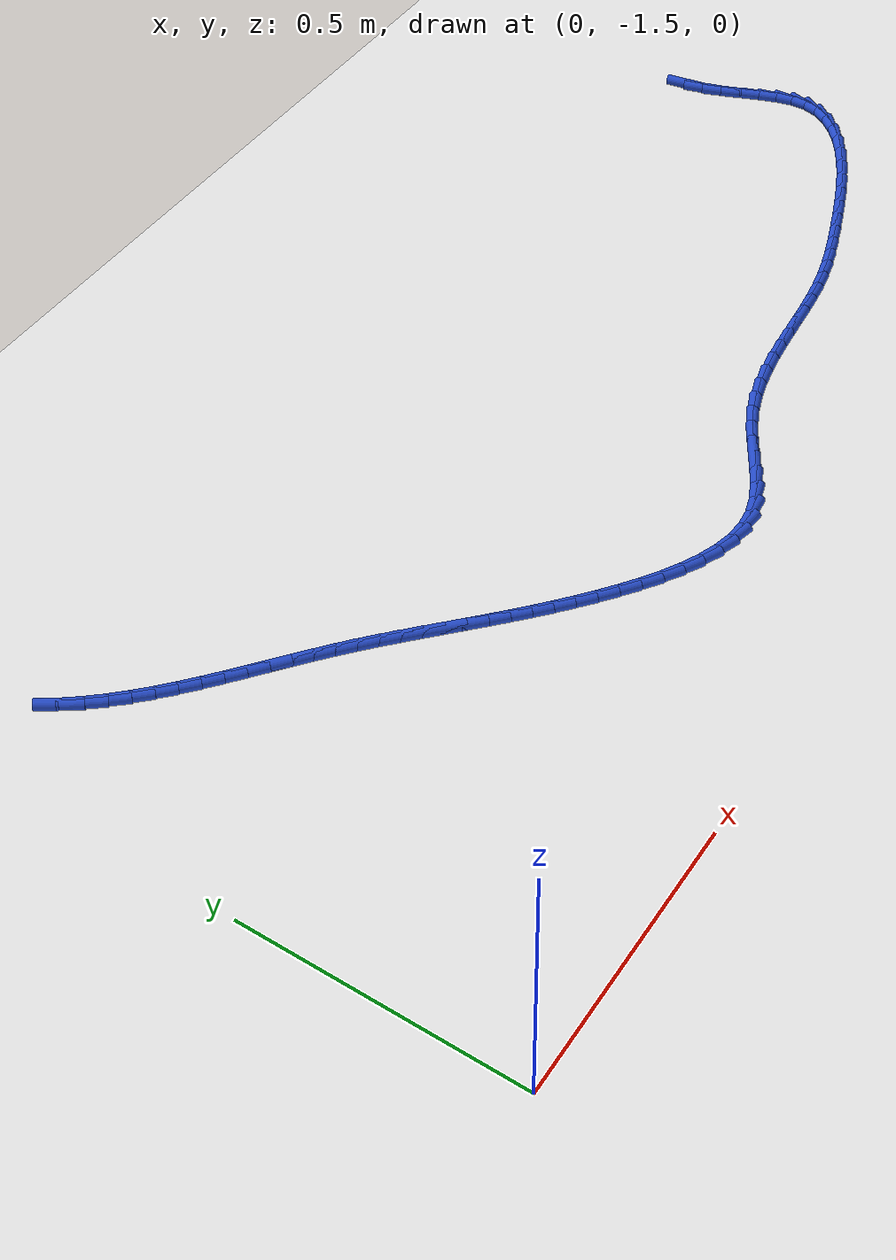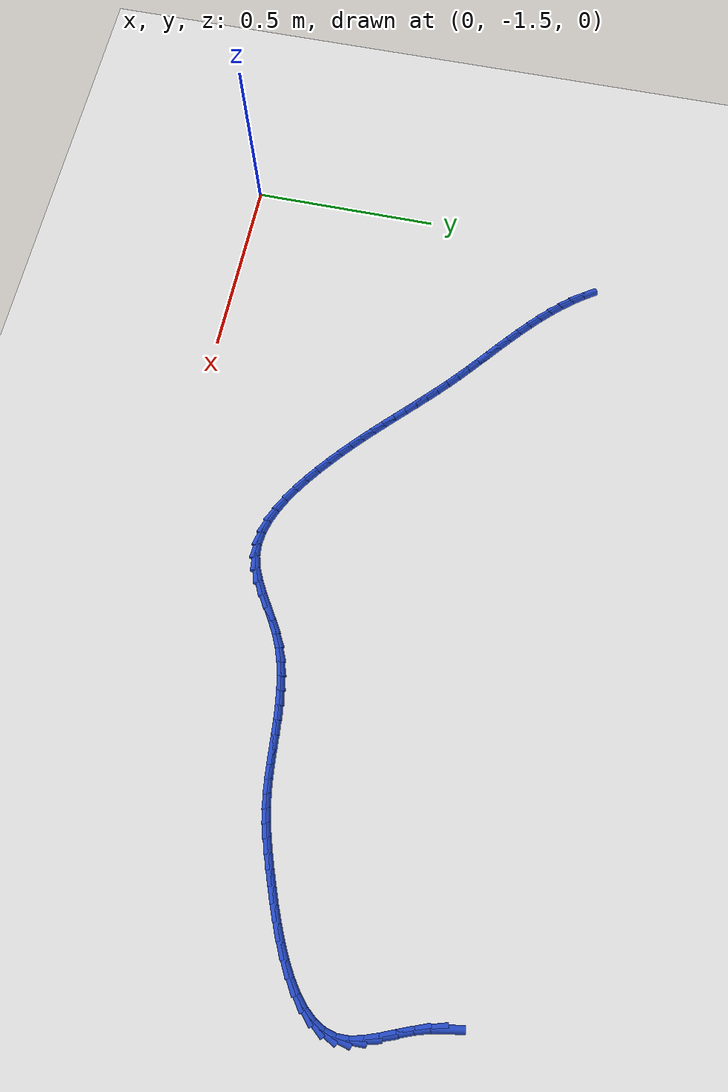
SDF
<sdf version="1.6">
 <world name="default">
  <model name="ground_plane">
   <static>1</static>
   <link name="link">
    <collision name="collision">
     <geometry><plane><normal>0 0 1</normal><size>100 100</size></plane></geometry>
     <surface><friction><ode><mu>100</mu><mu2>50</mu2></ode></friction></surface>
    </collision>
    <visual name="visual">
     <cast_shadows>0</cast_shadows>
     <geometry><plane><normal>0 0 1</normal><size>100 100</size></plane></geometry>
     <material>
      <script><uri>file://media/materials/scripts/gazebo.material</uri><name>Gazebo/WhiteGlow</name></script>
     </material>
    </visual>
   </link>
  </model>
  <model name="line">
   <link name="link_131">
    <pose>2.093746140932153 -0.5566467579130641 0.01 0 1.57 -1.3995459659377611</pose>
    <collision name="collision">
     <geometry><cylinder><radius>0.01</radius><length>0.08</length></cylinder></geometry>
    </collision>
    <visual name="visual">
     <material>
      <script><name>Gazebo/Blue</name><uri>file://media/materials/scripts/gazebo.material</uri></script>
     </material>
     <geometry><cylinder><radius>0.01</radius><length>0.08</length></cylinder></geometry>
    </visual>
   </link>
   <link name="link_132">
    <pose>2.100037263290954 -0.5930233383534328 0.01 0 1.57 -1.2737699588146127</pose>
    <collision name="collision">
     <geometry><cylinder><radius>0.01</radius><length>0.08</length></cylinder></geometry>
    </collision>
    <visual name="visual">
     <material>
      <script><name>Gazebo/Blue</name><uri>file://media/materials/scripts/gazebo.material</uri></script>
     </material>
     <geometry><cylinder><radius>0.01</radius><length>0.08</length></cylinder></geometry>
    </visual>
   </link>
   <link name="link_133">
    <pose>2.1110962240649487 -0.6291541620710152 0.01 0 1.57 -1.1995088237396205</pose>
    <collision name="collision">
     <geometry><cylinder><radius>0.01</radius><length>0.08</length></cylinder></geometry>
    </collision>
    <visual name="visual">
     <material>
      <script><name>Gazebo/Blue</name><uri>file://media/materials/scripts/gazebo.material</uri></script>
     </material>
     <geometry><cylinder><radius>0.01</radius><length>0.08</length></cylinder></geometry>
    </visual>
   </link>
   <link name="link_134">
    <pose>2.1249675826175642 -0.6647815752323886 0.01 0 1.57 -1.1824696325644213</pose>
    <collision name="collision">
     <geometry><cylinder><radius>0.01</radius><length>0.08</length></cylinder></geometry>
    </collision>
    <visual name="visual">
     <material>
      <script><name>Gazebo/Blue</name><uri>file://media/materials/scripts/gazebo.material</uri></script>
     </material>
     <geometry><cylinder><radius>0.01</radius><length>0.08</length></cylinder></geometry>
    </visual>
   </link>
   <link name="link_135">
    <pose>2.139216053657469 -0.6996103784028352 0.01 0 1.57 -1.2240419983407762</pose>
    <collision name="collision">
     <geometry><cylinder><radius>0.01</radius><length>0.08</length></cylinder></geometry>
    </collision>
    <visual name="visual">
     <material>
      <script><name>Gazebo/Blue</name><uri>file://media/materials/scripts/gazebo.material</uri></script>
     </material>
     <geometry><cylinder><radius>0.01</radius><length>0.08</length></cylinder></geometry>
    </visual>
   </link>
   <link name="link_136">
    <pose>2.1514063518933315 -0.7333453721476355 0.01 0 1.57 -1.3371872894118813</pose>
    <collision name="collision">
     <geometry><cylinder><radius>0.01</radius><length>0.08</length></cylinder></geometry>
    </collision>
    <visual name="visual">
     <material>
      <script><name>Gazebo/Blue</name><uri>file://media/materials/scripts/gazebo.material</uri></script>
     </material>
     <geometry><cylinder><radius>0.01</radius><length>0.08</length></cylinder></geometry>
    </visual>
   </link>
   <link name="link_137">
    <pose>2.1591031920338204 -0.7656913570320717 0.01 0 1.57 -1.5453141671799364</pose>
    <collision name="collision">
     <geometry><cylinder><radius>0.01</radius><length>0.08</length></cylinder></geometry>
    </collision>
    <visual name="visual">
     <material>
      <script><name>Gazebo/Blue</name><uri>file://media/materials/scripts/gazebo.material</uri></script>
     </material>
     <geometry><cylinder><radius>0.01</radius><length>0.08</length></cylinder></geometry>
    </visual>
   </link>
   <link name="link_138">
    <pose>2.159884725690776 -0.7963545543812864 0.01 0 1.57 1.319527106310528</pose>
    <collision name="collision">
     <geometry><cylinder><radius>0.01</radius><length>0.08</length></cylinder></geometry>
    </collision>
    <visual name="visual">
     <material>
      <script><name>Gazebo/Blue</name><uri>file://media/materials/scripts/gazebo.material</uri></script>
     </material>
     <geometry><cylinder><radius>0.01</radius><length>0.08</length></cylinder></geometry>
    </visual>
   </link>
   <link name="link_139">
    <pose>2.1524895339553765 -0.8251638843003861 0.01 0 1.57 1.0695301090280038</pose>
    <collision name="collision">
     <geometry><cylinder><radius>0.01</radius><length>0.08</length></cylinder></geometry>
    </collision>
    <visual name="visual">
     <material>
      <script><name>Gazebo/Blue</name><uri>file://media/materials/scripts/gazebo.material</uri></script>
     </material>
     <geometry><cylinder><radius>0.01</radius><length>0.08</length></cylinder></geometry>
    </visual>
   </link>
   <link name="link_140">
    <pose>2.13769497030376 -0.852163837843601 0.01 0 1.57 0.872276586212336</pose>
    <collision name="collision">
     <geometry><cylinder><radius>0.01</radius><length>0.08</length></cylinder></geometry>
    </collision>
    <visual name="visual">
     <material>
      <script><name>Gazebo/Blue</name><uri>file://media/materials/scripts/gazebo.material</uri></script>
     </material>
     <geometry><cylinder><radius>0.01</radius><length>0.08</length></cylinder></geometry>
    </visual>
   </link>
   <link name="link_141">
    <pose>2.116485180036541 -0.8774207713357569 0.01 0 1.57 0.724530944086806</pose>
    <collision name="collision">
     <geometry><cylinder><radius>0.01</radius><length>0.08</length></cylinder></geometry>
    </collision>
    <visual name="visual">
     <material>
      <script><name>Gazebo/Blue</name><uri>file://media/materials/scripts/gazebo.material</uri></script>
     </material>
     <geometry><cylinder><radius>0.01</radius><length>0.08</length></cylinder></geometry>
    </visual>
   </link>
   <link name="link_142">
    <pose>2.089844308454331 -0.9010010411016794 0.01 0 1.57 0.6152129471768553</pose>
    <collision name="collision">
     <geometry><cylinder><radius>0.01</radius><length>0.08</length></cylinder></geometry>
    </collision>
    <visual name="visual">
     <material>
      <script><name>Gazebo/Blue</name><uri>file://media/materials/scripts/gazebo.material</uri></script>
     </material>
     <geometry><cylinder><radius>0.01</radius><length>0.08</length></cylinder></geometry>
    </visual>
   </link>
   <link name="link_143">
    <pose>2.0587565008577404 -0.9229710034661932 0.01 0 1.57 0.533917298081862</pose>
    <collision name="collision">
     <geometry><cylinder><radius>0.01</radius><length>0.08</length></cylinder></geometry>
    </collision>
    <visual name="visual">
     <material>
      <script><name>Gazebo/Blue</name><uri>file://media/materials/scripts/gazebo.material</uri></script>
     </material>
     <geometry><cylinder><radius>0.01</radius><length>0.08</length></cylinder></geometry>
    </visual>
   </link>
   <link name="link_144">
    <pose>2.024205902547384 -0.9433970147541227 0.01 0 1.57 0.4729755636830195</pose>
    <collision name="collision">
     <geometry><cylinder><radius>0.01</radius><length>0.08</length></cylinder></geometry>
    </collision>
    <visual name="visual">
     <material>
      <script><name>Gazebo/Blue</name><uri>file://media/materials/scripts/gazebo.material</uri></script>
     </material>
     <geometry><cylinder><radius>0.01</radius><length>0.08</length></cylinder></geometry>
    </visual>
   </link>
   <link name="link_145">
    <pose>1.9871766588238746 -0.9623454312902929 0.01 0 1.57 0.42719498095827924</pose>
    <collision name="collision">
     <geometry><cylinder><radius>0.01</radius><length>0.08</length></cylinder></geometry>
    </collision>
    <visual name="visual">
     <material>
      <script><name>Gazebo/Blue</name><uri>file://media/materials/scripts/gazebo.material</uri></script>
     </material>
     <geometry><cylinder><radius>0.01</radius><length>0.08</length></cylinder></geometry>
    </visual>
   </link>
   <link name="link_146">
    <pose>1.9486529149878238 -0.9798826093995292 0.01 0 1.57 0.39322033971186304</pose>
    <collision name="collision">
     <geometry><cylinder><radius>0.01</radius><length>0.08</length></cylinder></geometry>
    </collision>
    <visual name="visual">
     <material>
      <script><name>Gazebo/Blue</name><uri>file://media/materials/scripts/gazebo.material</uri></script>
     </material>
     <geometry><cylinder><radius>0.01</radius><length>0.08</length></cylinder></geometry>
    </visual>
   </link>
   <link name="link_147">
    <pose>1.9096188163398433 -0.9960749054066561 0.01 0 1.57 0.36904492105961273</pose>
    <collision name="collision">
     <geometry><cylinder><radius>0.01</radius><length>0.08</length></cylinder></geometry>
    </collision>
    <visual name="visual">
     <material>
      <script><name>Gazebo/Blue</name><uri>file://media/materials/scripts/gazebo.material</uri></script>
     </material>
     <geometry><cylinder><radius>0.01</radius><length>0.08</length></cylinder></geometry>
    </visual>
   </link>
   <link name="link_148">
    <pose>1.871058508180545 -1.0109886756364987 0.01 0 1.57 0.3535977238496859</pose>
    <collision name="collision">
     <geometry><cylinder><radius>0.01</radius><length>0.08</length></cylinder></geometry>
    </collision>
    <visual name="visual">
     <material>
      <script><name>Gazebo/Blue</name><uri>file://media/materials/scripts/gazebo.material</uri></script>
     </material>
     <geometry><cylinder><radius>0.01</radius><length>0.08</length></cylinder></geometry>
    </visual>
   </link>
   <link name="link_149">
    <pose>1.833942421608485 -1.0246886306990974 0.01 0 1.57 0.3394520200477962</pose>
    <collision name="collision">
     <geometry><cylinder><radius>0.01</radius><length>0.08</length></cylinder></geometry>
    </collision>
    <visual name="visual">
     <material>
      <script><name>Gazebo/Blue</name><uri>file://media/materials/scripts/gazebo.material</uri></script>
     </material>
     <geometry><cylinder><radius>0.01</radius><length>0.08</length></cylinder></geometry>
    </visual>
   </link>
   <link name="link_150">
    <pose>1.7986131050929357 -1.0371641348065408 0.01 0 1.57 0.31584985885167016</pose>
    <collision name="collision">
     <geometry><cylinder><radius>0.01</radius><length>0.08</length></cylinder></geometry>
    </collision>
    <visual name="visual">
     <material>
      <script><name>Gazebo/Blue</name><uri>file://media/materials/scripts/gazebo.material</uri></script>
     </material>
     <geometry><cylinder><radius>0.01</radius><length>0.08</length></cylinder></geometry>
    </visual>
   </link>
   <link name="link_151">
    <pose>1.7645379841552427 -1.0482995367447598 0.01 0 1.57 0.2817200280627327</pose>
    <collision name="collision">
     <geometry><cylinder><radius>0.01</radius><length>0.08</length></cylinder></geometry>
    </collision>
    <visual name="visual">
     <material>
      <script><name>Gazebo/Blue</name><uri>file://media/materials/scripts/gazebo.material</uri></script>
     </material>
     <geometry><cylinder><radius>0.01</radius><length>0.08</length></cylinder></geometry>
    </visual>
   </link>
   <link name="link_152">
    <pose>1.7311196070226702 -1.0579713999745461 0.01 0 1.57 0.23777468711429522</pose>
    <collision name="collision">
     <geometry><cylinder><radius>0.01</radius><length>0.08</length></cylinder></geometry>
    </collision>
    <visual name="visual">
     <material>
      <script><name>Gazebo/Blue</name><uri>file://media/materials/scripts/gazebo.material</uri></script>
     </material>
     <geometry><cylinder><radius>0.01</radius><length>0.08</length></cylinder></geometry>
    </visual>
   </link>
   <link name="link_153">
    <pose>1.6977605219224885 -1.0660562879566924 0.01 0 1.57 0.18634451999565405</pose>
    <collision name="collision">
     <geometry><cylinder><radius>0.01</radius><length>0.08</length></cylinder></geometry>
    </collision>
    <visual name="visual">
     <material>
      <script><name>Gazebo/Blue</name><uri>file://media/materials/scripts/gazebo.material</uri></script>
     </material>
     <geometry><cylinder><radius>0.01</radius><length>0.08</length></cylinder></geometry>
    </visual>
   </link>
   <link name="link_154">
    <pose>1.6638800853630469 -1.0724438276055188 0.01 0 1.57 0.13966746080211803</pose>
    <collision name="collision">
     <geometry><cylinder><radius>0.01</radius><length>0.08</length></cylinder></geometry>
    </collision>
    <visual name="visual">
     <material>
      <script><name>Gazebo/Blue</name><uri>file://media/materials/scripts/gazebo.material</uri></script>
     </material>
     <geometry><cylinder><radius>0.01</radius><length>0.08</length></cylinder></geometry>
    </visual>
   </link>
   <link name="link_155">
    <pose>1.6292660499135092 -1.0773099645134305 0.01 0 1.57 0.10751599954095299</pose>
    <collision name="collision">
     <geometry><cylinder><radius>0.01</radius><length>0.08</length></cylinder></geometry>
    </collision>
    <visual name="visual">
     <material>
      <script><name>Gazebo/Blue</name><uri>file://media/materials/scripts/gazebo.material</uri></script>
     </material>
     <geometry><cylinder><radius>0.01</radius><length>0.08</length></cylinder></geometry>
    </visual>
   </link>
   <link name="link_156">
    <pose>1.5940647310427745 -1.0811093205845035 0.01 0 1.57 0.08954271360498796</pose>
    <collision name="collision">
     <geometry><cylinder><radius>0.01</radius><length>0.08</length></cylinder></geometry>
    </collision>
    <visual name="visual">
     <material>
      <script><name>Gazebo/Blue</name><uri>file://media/materials/scripts/gazebo.material</uri></script>
     </material>
     <geometry><cylinder><radius>0.01</radius><length>0.08</length></cylinder></geometry>
    </visual>
   </link>
   <link name="link_157">
    <pose>1.5584372854173523 -1.084308052352341 0.01 0 1.57 0.08516706233683337</pose>
    <collision name="collision">
     <geometry><cylinder><radius>0.01</radius><length>0.08</length></cylinder></geometry>
    </collision>
    <visual name="visual">
     <material>
      <script><name>Gazebo/Blue</name><uri>file://media/materials/scripts/gazebo.material</uri></script>
     </material>
     <geometry><cylinder><radius>0.01</radius><length>0.08</length></cylinder></geometry>
    </visual>
   </link>
   <link name="link_158">
    <pose>1.5225448697037511 -1.0873723163505467 0.01 0 1.57 0.09406349500017326</pose>
    <collision name="collision">
     <geometry><cylinder><radius>0.01</radius><length>0.08</length></cylinder></geometry>
    </collision>
    <visual name="visual">
     <material>
      <script><name>Gazebo/Blue</name><uri>file://media/materials/scripts/gazebo.material</uri></script>
     </material>
     <geometry><cylinder><radius>0.01</radius><length>0.08</length></cylinder></geometry>
    </visual>
   </link>
   <link name="link_159">
    <pose>1.4865486405684787 -1.0907682691127227 0.01 0 1.57 0.11616710275195877</pose>
    <collision name="collision">
     <geometry><cylinder><radius>0.01</radius><length>0.08</length></cylinder></geometry>
    </collision>
    <visual name="visual">
     <material>
      <script><name>Gazebo/Blue</name><uri>file://media/materials/scripts/gazebo.material</uri></script>
     </material>
     <geometry><cylinder><radius>0.01</radius><length>0.08</length></cylinder></geometry>
    </visual>
   </link>
   <link name="link_160">
    <pose>1.450609754678043 -1.0949620671724734 0.01 0 1.57 0.15161967731094445</pose>
    <collision name="collision">
     <geometry><cylinder><radius>0.01</radius><length>0.08</length></cylinder></geometry>
    </collision>
    <visual name="visual">
     <material>
      <script><name>Gazebo/Blue</name><uri>file://media/materials/scripts/gazebo.material</uri></script>
     </material>
     <geometry><cylinder><radius>0.01</radius><length>0.08</length></cylinder></geometry>
    </visual>
   </link>
   <link name="link_161">
    <pose>1.4148893686989539 -1.1004198670634011 0.01 0 1.57 0.20065323850941683</pose>
    <collision name="collision">
     <geometry><cylinder><radius>0.01</radius><length>0.08</length></cylinder></geometry>
    </collision>
    <visual name="visual">
     <material>
      <script><name>Gazebo/Blue</name><uri>file://media/materials/scripts/gazebo.material</uri></script>
     </material>
     <geometry><cylinder><radius>0.01</radius><length>0.08</length></cylinder></geometry>
    </visual>
   </link>
   <link name="link_162">
    <pose>1.3795486392977194 -1.1076078253191093 0.01 0 1.57 0.2633983317204103</pose>
    <collision name="collision">
     <geometry><cylinder><radius>0.01</radius><length>0.08</length></cylinder></geometry>
    </collision>
    <visual name="visual">
     <material>
      <script><name>Gazebo/Blue</name><uri>file://media/materials/scripts/gazebo.material</uri></script>
     </material>
     <geometry><cylinder><radius>0.01</radius><length>0.08</length></cylinder></geometry>
    </visual>
   </link>
   <link name="link_163">
    <pose>1.3447487231408477 -1.1169920984732014 0.01 0 1.57 0.3396100956903276</pose>
    <collision name="collision">
     <geometry><cylinder><radius>0.01</radius><length>0.08</length></cylinder></geometry>
    </collision>
    <visual name="visual">
     <material>
      <script><name>Gazebo/Blue</name><uri>file://media/materials/scripts/gazebo.material</uri></script>
     </material>
     <geometry><cylinder><radius>0.01</radius><length>0.08</length></cylinder></geometry>
    </visual>
   </link>
   <link name="link_164">
    <pose>1.310650776894847 -1.12903884305928 0.01 0 1.57 0.4281519346016235</pose>
    <collision name="collision">
     <geometry><cylinder><radius>0.01</radius><length>0.08</length></cylinder></geometry>
    </collision>
    <visual name="visual">
     <material>
      <script><name>Gazebo/Blue</name><uri>file://media/materials/scripts/gazebo.material</uri></script>
     </material>
     <geometry><cylinder><radius>0.01</radius><length>0.08</length></cylinder></geometry>
    </visual>
   </link>
   <link name="link_165">
    <pose>1.2774144858933896 -1.1442074256225172 0.01 0 1.57 0.5093910163206454</pose>
    <collision name="collision">
     <geometry><cylinder><radius>0.01</radius><length>0.08</length></cylinder></geometry>
    </collision>
    <visual name="visual">
     <material>
      <script><name>Gazebo/Blue</name><uri>file://media/materials/scripts/gazebo.material</uri></script>
     </material>
     <geometry><cylinder><radius>0.01</radius><length>0.08</length></cylinder></geometry>
    </visual>
   </link>
   <link name="link_166">
    <pose>1.2450534382307654 -1.1622829950590219 0.01 0 1.57 0.551619291246143</pose>
    <collision name="collision">
     <geometry><cylinder><radius>0.01</radius><length>0.08</length></cylinder></geometry>
    </collision>
    <visual name="visual">
     <material>
      <script><name>Gazebo/Blue</name><uri>file://media/materials/scripts/gazebo.material</uri></script>
     </material>
     <geometry><cylinder><radius>0.01</radius><length>0.08</length></cylinder></geometry>
    </visual>
   </link>
   <link name="link_167">
    <pose>1.2133132133978948 -1.1818138792869646 0.01 0 1.57 0.5534413962088646</pose>
    <collision name="collision">
     <geometry><cylinder><radius>0.01</radius><length>0.08</length></cylinder></geometry>
    </collision>
    <visual name="visual">
     <material>
      <script><name>Gazebo/Blue</name><uri>file://media/materials/scripts/gazebo.material</uri></script>
     </material>
     <geometry><cylinder><radius>0.01</radius><length>0.08</length></cylinder></geometry>
    </visual>
   </link>
   <link name="link_168">
    <pose>1.1819106862845639 -1.2012159386380261 0.01 0 1.57 0.5137423168200816</pose>
    <collision name="collision">
     <geometry><cylinder><radius>0.01</radius><length>0.08</length></cylinder></geometry>
    </collision>
    <visual name="visual">
     <material>
      <script><name>Gazebo/Blue</name><uri>file://media/materials/scripts/gazebo.material</uri></script>
     </material>
     <geometry><cylinder><radius>0.01</radius><length>0.08</length></cylinder></geometry>
    </visual>
   </link>
   <link name="link_169">
    <pose>1.1505627317805591 -1.2189050334438862 0.01 0 1.57 0.4276514849572683</pose>
    <collision name="collision">
     <geometry><cylinder><radius>0.01</radius><length>0.08</length></cylinder></geometry>
    </collision>
    <visual name="visual">
     <material>
      <script><name>Gazebo/Blue</name><uri>file://media/materials/scripts/gazebo.material</uri></script>
     </material>
     <geometry><cylinder><radius>0.01</radius><length>0.08</length></cylinder></geometry>
    </visual>
   </link>
   <link name="link_170">
    <pose>1.1189862247756686 -1.2332970240362253 0.01 0 1.57 0.28814530086939044</pose>
    <collision name="collision">
     <geometry><cylinder><radius>0.01</radius><length>0.08</length></cylinder></geometry>
    </collision>
    <visual name="visual">
     <material>
      <script><name>Gazebo/Blue</name><uri>file://media/materials/scripts/gazebo.material</uri></script>
     </material>
     <geometry><cylinder><radius>0.01</radius><length>0.08</length></cylinder></geometry>
    </visual>
   </link>
   <link name="link_171">
    <pose>1.0868980401596773 -1.2428077707467224 0.01 0 1.57 0.09949980951788943</pose>
    <collision name="collision">
     <geometry><cylinder><radius>0.01</radius><length>0.08</length></cylinder></geometry>
    </collision>
    <visual name="visual">
     <material>
      <script><name>Gazebo/Blue</name><uri>file://media/materials/scripts/gazebo.material</uri></script>
     </material>
     <geometry><cylinder><radius>0.01</radius><length>0.08</length></cylinder></geometry>
    </visual>
   </link>
   <link name="link_172">
    <pose>1.0540686104729706 -1.2460851153611598 0.01 0 1.57 -0.08321825398170896</pose>
    <collision name="collision">
     <geometry><cylinder><radius>0.01</radius><length>0.08</length></cylinder></geometry>
    </collision>
    <visual name="visual">
     <material>
      <script><name>Gazebo/Blue</name><uri>file://media/materials/scripts/gazebo.material</uri></script>
     </material>
     <geometry><cylinder><radius>0.01</radius><length>0.08</length></cylinder></geometry>
    </visual>
   </link>
   <link name="link_173">
    <pose>1.0206188623985366 -1.2432950420772289 0.01 0 1.57 -0.23462179469701536</pose>
    <collision name="collision">
     <geometry><cylinder><radius>0.01</radius><length>0.08</length></cylinder></geometry>
    </collision>
    <visual name="visual">
     <material>
      <script><name>Gazebo/Blue</name><uri>file://media/materials/scripts/gazebo.material</uri></script>
     </material>
     <geometry><cylinder><radius>0.01</radius><length>0.08</length></cylinder></geometry>
    </visual>
   </link>
   <link name="link_174">
    <pose>0.986810679329879 -1.2352140798477607 0.01 0 1.57 -0.3556518075672197</pose>
    <collision name="collision">
     <geometry><cylinder><radius>0.01</radius><length>0.08</length></cylinder></geometry>
    </collision>
    <visual name="visual">
     <material>
      <script><name>Gazebo/Blue</name><uri>file://media/materials/scripts/gazebo.material</uri></script>
     </material>
     <geometry><cylinder><radius>0.01</radius><length>0.08</length></cylinder></geometry>
    </visual>
   </link>
   <link name="link_175">
    <pose>0.9529063286770647 -1.2226204209681795 0.01 0 1.57 -0.4507382529677928</pose>
    <collision name="collision">
     <geometry><cylinder><radius>0.01</radius><length>0.08</length></cylinder></geometry>
    </collision>
    <visual name="visual">
     <material>
      <script><name>Gazebo/Blue</name><uri>file://media/materials/scripts/gazebo.material</uri></script>
     </material>
     <geometry><cylinder><radius>0.01</radius><length>0.08</length></cylinder></geometry>
    </visual>
   </link>
   <link name="link_176">
    <pose>0.9191680778501632 -1.206292257733911 0.01 0 1.57 -0.5247914061486313</pose>
    <collision name="collision">
     <geometry><cylinder><radius>0.01</radius><length>0.08</length></cylinder></geometry>
    </collision>
    <visual name="visual">
     <material>
      <script><name>Gazebo/Blue</name><uri>file://media/materials/scripts/gazebo.material</uri></script>
     </material>
     <geometry><cylinder><radius>0.01</radius><length>0.08</length></cylinder></geometry>
    </visual>
   </link>
   <link name="link_177">
    <pose>0.885858194259243 -1.18700778244038 0.01 0 1.57 -0.5819599510654141</pose>
    <collision name="collision">
     <geometry><cylinder><radius>0.01</radius><length>0.08</length></cylinder></geometry>
    </collision>
    <visual name="visual">
     <material>
      <script><name>Gazebo/Blue</name><uri>file://media/materials/scripts/gazebo.material</uri></script>
     </material>
     <geometry><cylinder><radius>0.01</radius><length>0.08</length></cylinder></geometry>
    </visual>
   </link>
   <link name="link_178">
    <pose>0.8532389453143713 -1.1655451873830107 0.01 0 1.57 -0.62532694178897</pose>
    <collision name="collision">
     <geometry><cylinder><radius>0.01</radius><length>0.08</length></cylinder></geometry>
    </collision>
    <visual name="visual">
     <material>
      <script><name>Gazebo/Blue</name><uri>file://media/materials/scripts/gazebo.material</uri></script>
     </material>
     <geometry><cylinder><radius>0.01</radius><length>0.08</length></cylinder></geometry>
    </visual>
   </link>
   <link name="link_179">
    <pose>0.8215725984256191 -1.1426826648572297 0.01 0 1.57 -0.6571502759332923</pose>
    <collision name="collision">
     <geometry><cylinder><radius>0.01</radius><length>0.08</length></cylinder></geometry>
    </collision>
    <visual name="visual">
     <material>
      <script><name>Gazebo/Blue</name><uri>file://media/materials/scripts/gazebo.material</uri></script>
     </material>
     <geometry><cylinder><radius>0.01</radius><length>0.08</length></cylinder></geometry>
    </visual>
   </link>
   <link name="link_180">
    <pose>0.7911102434925634 -1.1191794728721869 0.01 0 1.57 -0.6824569012824275</pose>
    <collision name="collision">
     <geometry><cylinder><radius>0.01</radius><length>0.08</length></cylinder></geometry>
    </collision>
    <visual name="visual">
     <material>
      <script><name>Gazebo/Blue</name><uri>file://media/materials/scripts/gazebo.material</uri></script>
     </material>
     <geometry><cylinder><radius>0.01</radius><length>0.08</length></cylinder></geometry>
    </visual>
   </link>
   <link name="link_181">
    <pose>0.7618867211044691 -1.0954285511632391 0.01 0 1.57 -0.704773171178609</pose>
    <collision name="collision">
     <geometry><cylinder><radius>0.01</radius><length>0.08</length></cylinder></geometry>
    </collision>
    <visual name="visual">
     <material>
      <script><name>Gazebo/Blue</name><uri>file://media/materials/scripts/gazebo.material</uri></script>
     </material>
     <geometry><cylinder><radius>0.01</radius><length>0.08</length></cylinder></geometry>
    </visual>
   </link>
   <link name="link_182">
    <pose>0.733741134892128 -1.0714912683516367 0.01 0 1.57 -0.7238626292373767</pose>
    <collision name="collision">
     <geometry><cylinder><radius>0.01</radius><length>0.08</length></cylinder></geometry>
    </collision>
    <visual name="visual">
     <material>
      <script><name>Gazebo/Blue</name><uri>file://media/materials/scripts/gazebo.material</uri></script>
     </material>
     <geometry><cylinder><radius>0.01</radius><length>0.08</length></cylinder></geometry>
    </visual>
   </link>
   <link name="link_183">
    <pose>0.7065055262236122 -1.0474170298487362 0.01 0 1.57 -0.7393979932323819</pose>
    <collision name="collision">
     <geometry><cylinder><radius>0.01</radius><length>0.08</length></cylinder></geometry>
    </collision>
    <visual name="visual">
     <material>
      <script><name>Gazebo/Blue</name><uri>file://media/materials/scripts/gazebo.material</uri></script>
     </material>
     <geometry><cylinder><radius>0.01</radius><length>0.08</length></cylinder></geometry>
    </visual>
   </link>
   <link name="link_184">
    <pose>0.6800119364669919 -1.023255241065891 0.01 0 1.57 -0.7511016757510652</pose>
    <collision name="collision">
     <geometry><cylinder><radius>0.01</radius><length>0.08</length></cylinder></geometry>
    </collision>
    <visual name="visual">
     <material>
      <script><name>Gazebo/Blue</name><uri>file://media/materials/scripts/gazebo.material</uri></script>
     </material>
     <geometry><cylinder><radius>0.01</radius><length>0.08</length></cylinder></geometry>
    </visual>
   </link>
   <link name="link_185">
    <pose>0.6540924069903375 -0.999055307414456 0.01 0 1.57 -0.7587505747977208</pose>
    <collision name="collision">
     <geometry><cylinder><radius>0.01</radius><length>0.08</length></cylinder></geometry>
    </collision>
    <visual name="visual">
     <material>
      <script><name>Gazebo/Blue</name><uri>file://media/materials/scripts/gazebo.material</uri></script>
     </material>
     <geometry><cylinder><radius>0.01</radius><length>0.08</length></cylinder></geometry>
    </visual>
   </link>
   <link name="link_186">
    <pose>0.6285789791617196 -0.9748666343057852 0.01 0 1.57 -0.7621796401138955</pose>
    <collision name="collision">
     <geometry><cylinder><radius>0.01</radius><length>0.08</length></cylinder></geometry>
    </collision>
    <visual name="visual">
     <material>
      <script><name>Gazebo/Blue</name><uri>file://media/materials/scripts/gazebo.material</uri></script>
     </material>
     <geometry><cylinder><radius>0.01</radius><length>0.08</length></cylinder></geometry>
    </visual>
   </link>
   <link name="link_187">
    <pose>0.6033036943492095 -0.9507386271512341 0.01 0 1.57 -0.7612847679846055</pose>
    <collision name="collision">
     <geometry><cylinder><radius>0.01</radius><length>0.08</length></cylinder></geometry>
    </collision>
    <visual name="visual">
     <material>
      <script><name>Gazebo/Blue</name><uri>file://media/materials/scripts/gazebo.material</uri></script>
     </material>
     <geometry><cylinder><radius>0.01</radius><length>0.08</length></cylinder></geometry>
    </visual>
   </link>
   <link name="link_188">
    <pose>0.578098593920878 -0.9267206913621571 0.01 0 1.57 -0.7560254808525458</pose>
    <collision name="collision">
     <geometry><cylinder><radius>0.01</radius><length>0.08</length></cylinder></geometry>
    </collision>
    <visual name="visual">
     <material>
      <script><name>Gazebo/Blue</name><uri>file://media/materials/scripts/gazebo.material</uri></script>
     </material>
     <geometry><cylinder><radius>0.01</radius><length>0.08</length></cylinder></geometry>
    </visual>
   </link>
   <link name="link_189">
    <pose>0.5527957192447955 -0.9028622323499083 0.01 0 1.57 -0.7464276247982197</pose>
    <collision name="collision">
     <geometry><cylinder><radius>0.01</radius><length>0.08</length></cylinder></geometry>
    </collision>
    <visual name="visual">
     <material>
      <script><name>Gazebo/Blue</name><uri>file://media/materials/scripts/gazebo.material</uri></script>
     </material>
     <geometry><cylinder><radius>0.01</radius><length>0.08</length></cylinder></geometry>
    </visual>
   </link>
   <link name="link_190">
    <pose>0.527227111689032 -0.8792126555258418 0.01 0 1.57 -0.7325860069023477</pose>
    <collision name="collision">
     <geometry><cylinder><radius>0.01</radius><length>0.08</length></cylinder></geometry>
    </collision>
    <visual name="visual">
     <material>
      <script><name>Gazebo/Blue</name><uri>file://media/materials/scripts/gazebo.material</uri></script>
     </material>
     <geometry><cylinder><radius>0.01</radius><length>0.08</length></cylinder></geometry>
    </visual>
   </link>
   <link name="link_191">
    <pose>0.5012248126216596 -0.8558213663013137 0.01 0 1.57 -0.7147016129507954</pose>
    <collision name="collision">
     <geometry><cylinder><radius>0.01</radius><length>0.08</length></cylinder></geometry>
    </collision>
    <visual name="visual">
     <material>
      <script><name>Gazebo/Blue</name><uri>file://media/materials/scripts/gazebo.material</uri></script>
     </material>
     <geometry><cylinder><radius>0.01</radius><length>0.08</length></cylinder></geometry>
    </visual>
   </link>
   <link name="link_192">
    <pose>0.4746220638870177 -0.8327371765929423 0.01 0 1.57 -0.6964527363368678</pose>
    <collision name="collision">
     <geometry><cylinder><radius>0.01</radius><length>0.08</length></cylinder></geometry>
    </collision>
    <visual name="visual">
     <material>
      <script><name>Gazebo/Blue</name><uri>file://media/materials/scripts/gazebo.material</uri></script>
     </material>
     <geometry><cylinder><radius>0.01</radius><length>0.08</length></cylinder></geometry>
    </visual>
   </link>
   <link name="link_193">
    <pose>0.44737208400083867 -0.8099495839230149 0.01 0 1.57 -0.6841648795162373</pose>
    <collision name="collision">
     <geometry><cylinder><radius>0.01</radius><length>0.08</length></cylinder></geometry>
    </collision>
    <visual name="visual">
     <material>
      <script><name>Gazebo/Blue</name><uri>file://media/materials/scripts/gazebo.material</uri></script>
     </material>
     <geometry><cylinder><radius>0.01</radius><length>0.08</length></cylinder></geometry>
    </visual>
   </link>
   <link name="link_194">
    <pose>0.41964861130194675 -0.7873390646216727 0.01 0 1.57 -0.6783246108564966</pose>
    <collision name="collision">
     <geometry><cylinder><radius>0.01</radius><length>0.08</length></cylinder></geometry>
    </collision>
    <visual name="visual">
     <material>
      <script><name>Gazebo/Blue</name><uri>file://media/materials/scripts/gazebo.material</uri></script>
     </material>
     <geometry><cylinder><radius>0.01</radius><length>0.08</length></cylinder></geometry>
    </visual>
   </link>
   <link name="link_195">
    <pose>0.39164905982307846 -0.7647743901648655 0.01 0 1.57 -0.6787991927957367</pose>
    <collision name="collision">
     <geometry><cylinder><radius>0.01</radius><length>0.08</length></cylinder></geometry>
    </collision>
    <visual name="visual">
     <material>
      <script><name>Gazebo/Blue</name><uri>file://media/materials/scripts/gazebo.material</uri></script>
     </material>
     <geometry><cylinder><radius>0.01</radius><length>0.08</length></cylinder></geometry>
    </visual>
   </link>
   <link name="link_196">
    <pose>0.3635708435969731 -0.7421243320285453 0.01 0 1.57 -0.6855311513107705</pose>
    <collision name="collision">
     <geometry><cylinder><radius>0.01</radius><length>0.08</length></cylinder></geometry>
    </collision>
    <visual name="visual">
     <material>
      <script><name>Gazebo/Blue</name><uri>file://media/materials/scripts/gazebo.material</uri></script>
     </material>
     <geometry><cylinder><radius>0.01</radius><length>0.08</length></cylinder></geometry>
    </visual>
   </link>
   <link name="link_197">
    <pose>0.33561137665636737 -0.719257661688662 0.01 0 1.57 -0.69853543904487</pose>
    <collision name="collision">
     <geometry><cylinder><radius>0.01</radius><length>0.08</length></cylinder></geometry>
    </collision>
    <visual name="visual">
     <material>
      <script><name>Gazebo/Blue</name><uri>file://media/materials/scripts/gazebo.material</uri></script>
     </material>
     <geometry><cylinder><radius>0.01</radius><length>0.08</length></cylinder></geometry>
    </visual>
   </link>
   <link name="link_198">
    <pose>0.307968073033999 -0.6960431506211665 0.01 0 1.57 -0.7178912481670562</pose>
    <collision name="collision">
     <geometry><cylinder><radius>0.01</radius><length>0.08</length></cylinder></geometry>
    </collision>
    <visual name="visual">
     <material>
      <script><name>Gazebo/Blue</name><uri>file://media/materials/scripts/gazebo.material</uri></script>
     </material>
     <geometry><cylinder><radius>0.01</radius><length>0.08</length></cylinder></geometry>
    </visual>
   </link>
   <link name="link_199">
    <pose>0.2808383467626049 -0.6723495703020093 0.01 0 1.57 -0.7437277440149276</pose>
    <collision name="collision">
     <geometry><cylinder><radius>0.01</radius><length>0.08</length></cylinder></geometry>
    </collision>
    <visual name="visual">
     <material>
      <script><name>Gazebo/Blue</name><uri>file://media/materials/scripts/gazebo.material</uri></script>
     </material>
     <geometry><cylinder><radius>0.01</radius><length>0.08</length></cylinder></geometry>
    </visual>
   </link>
   <link name="link_200">
    <pose>0.25441961187492396 -0.648045692207141 0.01 0 1.57 -0.7762021348718081</pose>
    <collision name="collision">
     <geometry><cylinder><radius>0.01</radius><length>0.08</length></cylinder></geometry>
    </collision>
    <visual name="visual">
     <material>
      <script><name>Gazebo/Blue</name><uri>file://media/materials/scripts/gazebo.material</uri></script>
     </material>
     <geometry><cylinder><radius>0.01</radius><length>0.08</length></cylinder></geometry>
    </visual>
   </link>
   <link name="link_201">
    <pose>0.22890928240369318 -0.623000287812513 0.01 0 1.57 -0.8154679705289636</pose>
    <collision name="collision">
     <geometry><cylinder><radius>0.01</radius><length>0.08</length></cylinder></geometry>
    </collision>
    <visual name="visual">
     <material>
      <script><name>Gazebo/Blue</name><uri>file://media/materials/scripts/gazebo.material</uri></script>
     </material>
     <geometry><cylinder><radius>0.01</radius><length>0.08</length></cylinder></geometry>
    </visual>
   </link>
   <link name="link_202">
    <pose>0.20450477238165013 -0.5970821285940754 0.01 0 1.57 -0.8616316857579226</pose>
    <collision name="collision">
     <geometry><cylinder><radius>0.01</radius><length>0.08</length></cylinder></geometry>
    </collision>
    <visual name="visual">
     <material>
      <script><name>Gazebo/Blue</name><uri>file://media/materials/scripts/gazebo.material</uri></script>
     </material>
     <geometry><cylinder><radius>0.01</radius><length>0.08</length></cylinder></geometry>
    </visual>
   </link>
   <link name="link_203">
    <pose>0.18140349584153198 -0.5701599860277784 0.01 0 1.57 -0.9146966847646454</pose>
    <collision name="collision">
     <geometry><cylinder><radius>0.01</radius><length>0.08</length></cylinder></geometry>
    </collision>
    <visual name="visual">
     <material>
      <script><name>Gazebo/Blue</name><uri>file://media/materials/scripts/gazebo.material</uri></script>
     </material>
     <geometry><cylinder><radius>0.01</radius><length>0.08</length></cylinder></geometry>
    </visual>
   </link>
   <link name="link_204">
    <pose>0.15980286681607733 -0.5421026315895738 0.01 0 1.57 -0.9729629632276622</pose>
    <collision name="collision">
     <geometry><cylinder><radius>0.01</radius><length>0.08</length></cylinder></geometry>
    </collision>
    <visual name="visual">
     <material>
      <script><name>Gazebo/Blue</name><uri>file://media/materials/scripts/gazebo.material</uri></script>
     </material>
     <geometry><cylinder><radius>0.01</radius><length>0.08</length></cylinder></geometry>
    </visual>
   </link>
  </model>
 </world>
</sdf>
